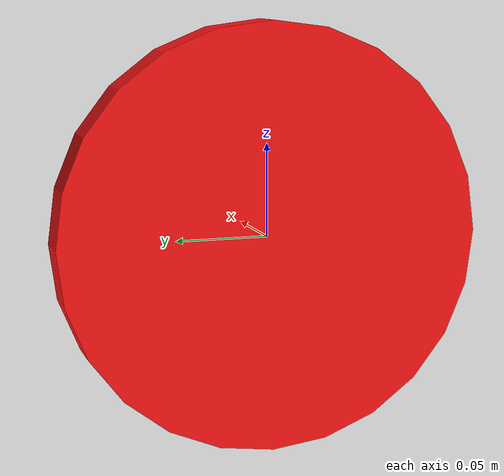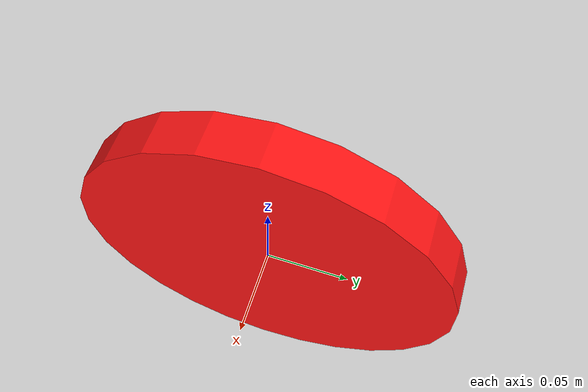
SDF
<?xml version="1.0"?>
<sdf version="1.6">
  <model name="tl_lamp_red">
    <static>true</static>
    <link name="link">
      <!-- İnce disk — eksen X boyunca (0 π/2 0), sadece önden görünür -->
      <visual name="glow">
        <pose>0 0 0 0 1.5708 0</pose>
        <geometry><cylinder><radius>0.115</radius><length>0.025</length></cylinder></geometry>
        <material>
          <ambient>1.0 0.05 0.05 1</ambient>
          <diffuse>1.0 0.08 0.08 1</diffuse>
          <emissive>1.0 0.0  0.0  1</emissive>
          <specular>1.0 0.3  0.3  1</specular>
        </material>
      </visual>
    </link>
  </model>
</sdf>
